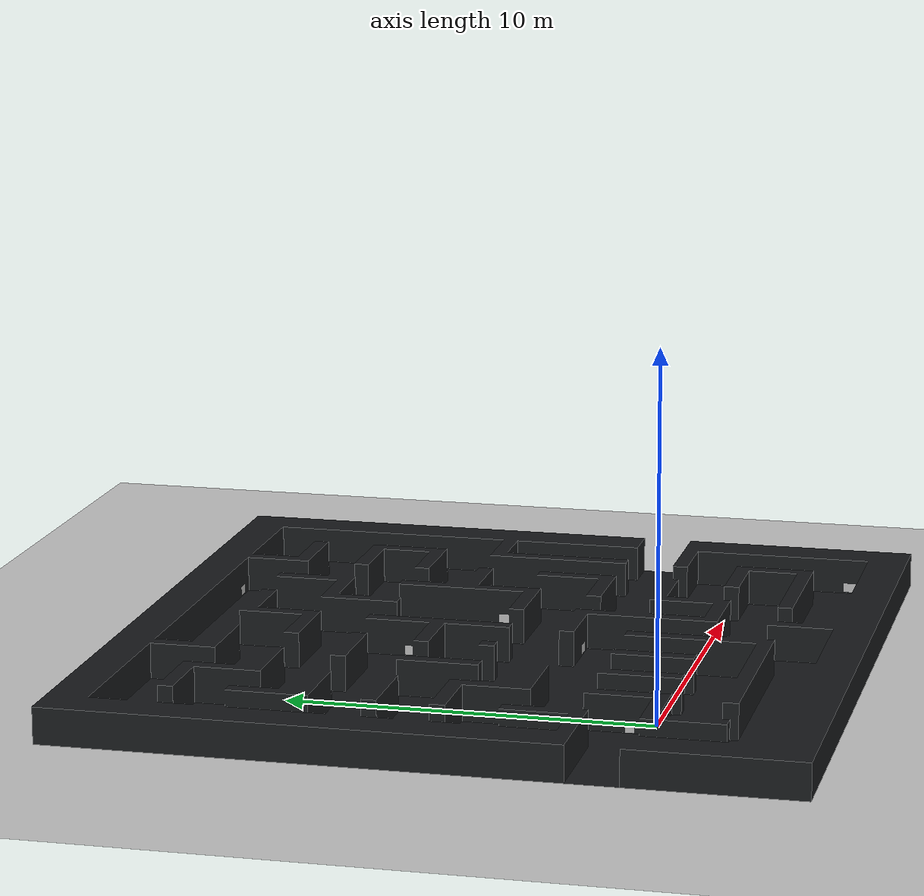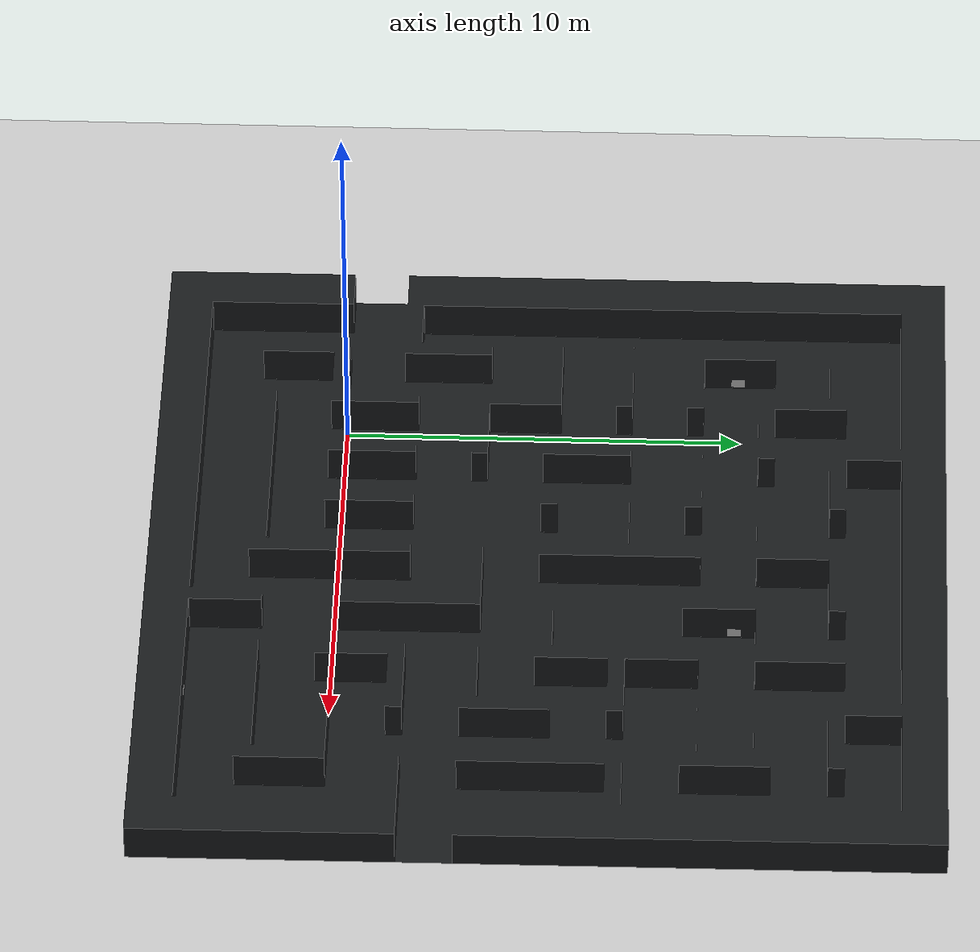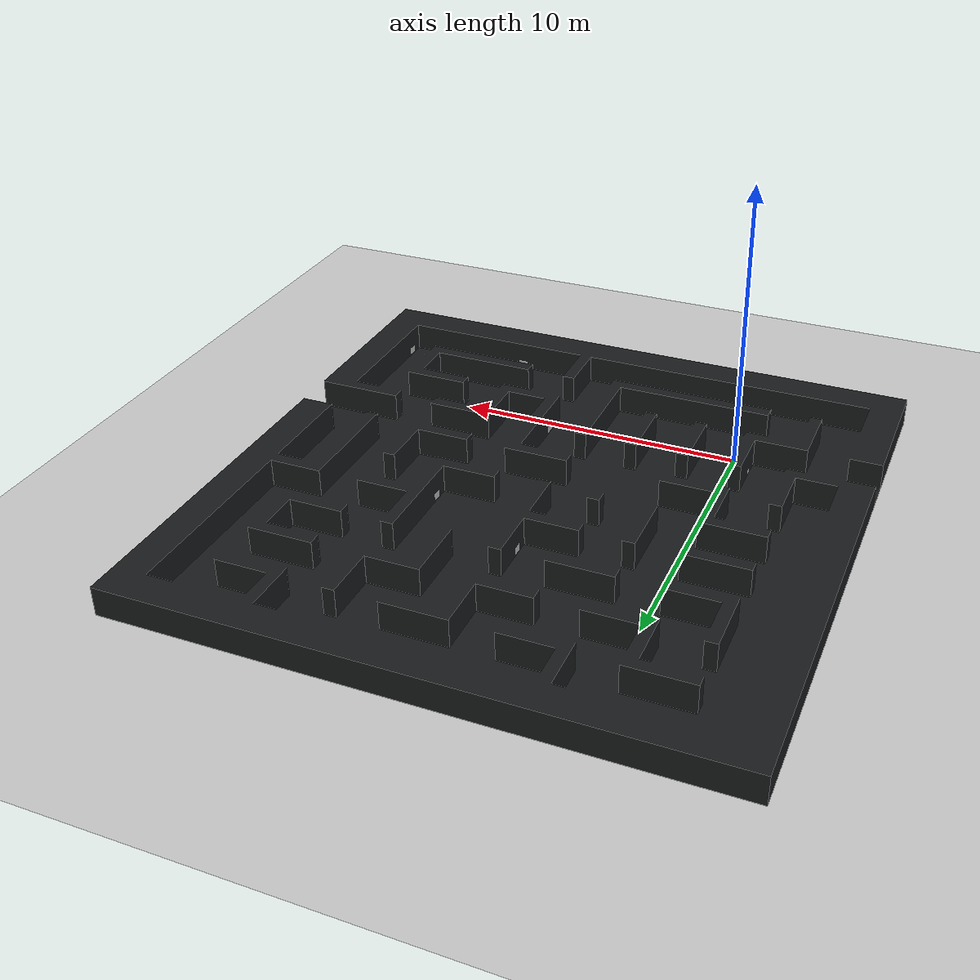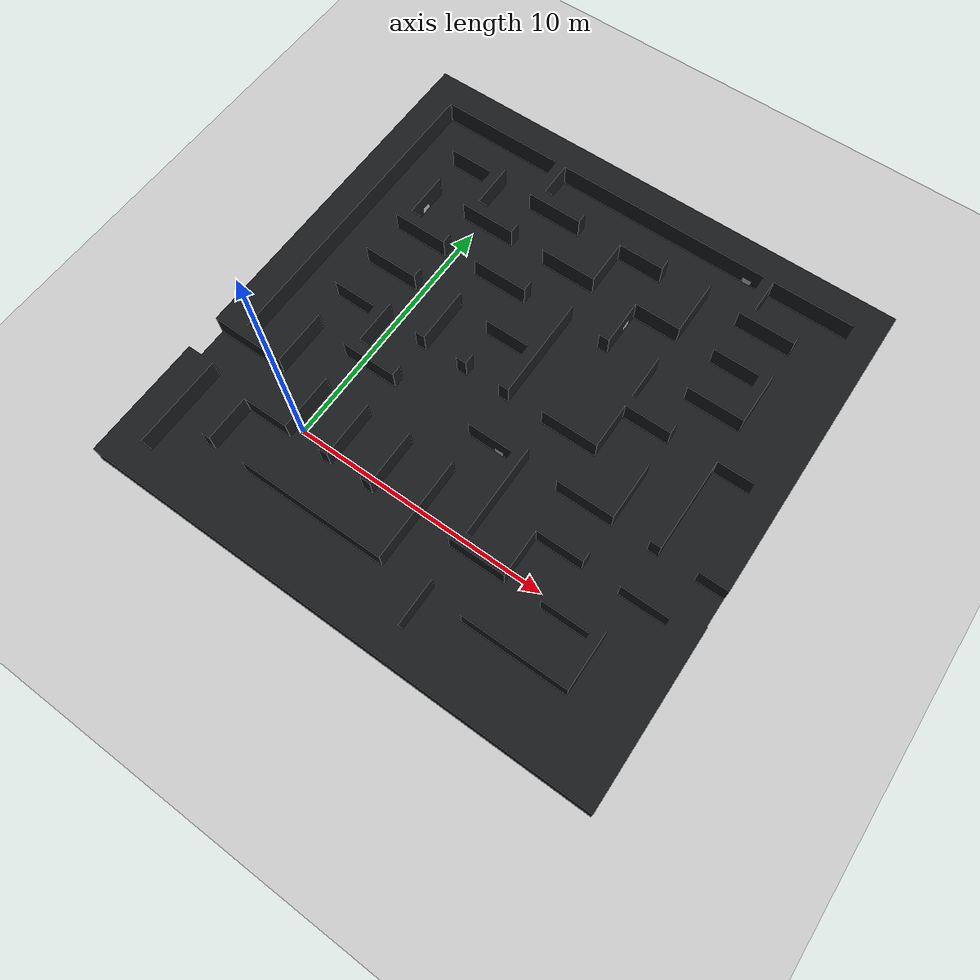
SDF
<sdf version="1.6">
 <world name="default">
  <model name="ground_plane">
   <static>1</static>
   <link name="link">
    <collision name="collision">
     <geometry><plane><normal>0 0 1</normal><size>100 100</size></plane></geometry>
     <surface>
      <contact><collide_bitmask>65535</collide_bitmask></contact>
      <friction><ode><mu>100</mu><mu2>50</mu2></ode></friction>
     </surface>
    </collision>
    <visual name="visual">
     <cast_shadows>0</cast_shadows>
     <geometry><plane><normal>0 0 1</normal><size>100 100</size></plane></geometry>
     <material>
      <script><uri>file://media/materials/scripts/gazebo.material</uri><name>Gazebo/Grey</name></script>
     </material>
    </visual>
   </link>
  </model>
  <physics name="default_physics" default="0" type="ode">
   <real_time_update_rate>1000</real_time_update_rate>
   <max_step_size>0.001</max_step_size>
   <real_time_factor>1</real_time_factor>
   <ode>
    <solver>
     <type>quick</type>
     <iters>150</iters>
     <precon_iters>0</precon_iters>
     <sor>1.4</sor>
     <use_dynamic_moi_rescaling>1</use_dynamic_moi_rescaling>
    </solver>
    <constraints>
     <cfm>1e-05</cfm>
     <erp>0.2</erp>
     <contact_max_correcting_vel>2000</contact_max_correcting_vel>
     <contact_surface_layer>0.01</contact_surface_layer>
    </constraints>
   </ode>
  </physics>
  <scene><ambient>0.4 0.4 0.4 1</ambient><background>0.7 0.7 0.7 1</background><shadows>1</shadows></scene>
  <gravity>0 0 -9.8</gravity>
  <magnetic_field>6e-06 2.3e-05 -4.2e-05</magnetic_field>
  <atmosphere type="adiabatic"/>
  <audio><device>default</device></audio>
  <spherical_coordinates>
   <surface_model>EARTH_WGS84</surface_model>
   <latitude_deg>0</latitude_deg>
   <longitude_deg>0</longitude_deg>
   <elevation>0</elevation>
   <heading_deg>0</heading_deg>
  </spherical_coordinates>
  <light name="user_point_light_0" type="point">
   <pose>-1.92668 0.501048 1 0 -0 0</pose>
   <diffuse>0.5 0.5 0.5 1</diffuse>
   <specular>0.1 0.1 0.1 1</specular>
   <attenuation>
    <range>20</range>
    <constant>0.5</constant>
    <linear>0.01</linear>
    <quadratic>0.001</quadratic>
   </attenuation>
   <cast_shadows>0</cast_shadows>
   <direction>0 0 -1</direction>
  </light>
  <light name="user_point_light_0_clone" type="point">
   <pose>-6.74547 -5.11479 3.92749 0 -0 0</pose>
   <diffuse>1 1 1 1</diffuse>
   <specular>1 1 1 1</specular>
   <direction>0 0 -1</direction>
   <attenuation>
    <range>20</range>
    <constant>0.5</constant>
    <linear>0.01</linear>
    <quadratic>0.001</quadratic>
   </attenuation>
   <cast_shadows>0</cast_shadows>
  </light>
  <light name="user_point_light_0_clone_0" type="point">
   <pose>3.30737 13.7928 3.92749 0 -0 0</pose>
   <diffuse>1 1 1 1</diffuse>
   <specular>1 1 1 1</specular>
   <direction>0 0 -1</direction>
   <attenuation>
    <range>20</range>
    <constant>0.5</constant>
    <linear>0.01</linear>
    <quadratic>0.001</quadratic>
   </attenuation>
   <cast_shadows>0</cast_shadows>
  </light>
  <light name="user_point_light_0_clone_1" type="point">
   <pose>15.1057 7.74887 3.92749 0 -0 0</pose>
   <diffuse>1 1 1 1</diffuse>
   <specular>1 1 1 1</specular>
   <direction>0 0 -1</direction>
   <attenuation>
    <range>20</range>
    <constant>0.5</constant>
    <linear>0.01</linear>
    <quadratic>0.001</quadratic>
   </attenuation>
   <cast_shadows>0</cast_shadows>
  </light>
  <light name="user_point_light_0_clone_2" type="point">
   <pose>16.1184 -1.6573 3.92749 0 -0 0</pose>
   <diffuse>1 1 1 1</diffuse>
   <specular>1 1 1 1</specular>
   <direction>0 0 -1</direction>
   <attenuation>
    <range>20</range>
    <constant>0.5</constant>
    <linear>0.01</linear>
    <quadratic>0.001</quadratic>
   </attenuation>
   <cast_shadows>0</cast_shadows>
  </light>
  <light name="user_point_light_0_clone_3" type="point">
   <pose>-10.2139 6.97976 3.92749 0 -0 0</pose>
   <diffuse>1 1 1 1</diffuse>
   <specular>1 1 1 1</specular>
   <direction>0 0 -1</direction>
   <attenuation>
    <range>20</range>
    <constant>0.5</constant>
    <linear>0.01</linear>
    <quadratic>0.001</quadratic>
   </attenuation>
   <cast_shadows>0</cast_shadows>
  </light>
  <model name="maze_01">
   <link name="link_1">
    <inertial>
     <mass>100000</mass>
     <inertia>
      <ixx>0.166667</ixx>
      <ixy>0</ixy>
      <ixz>0</ixz>
      <iyy>0.166667</iyy>
      <iyz>0</iyz>
      <izz>0.166667</izz>
     </inertia>
    </inertial>
    <pose>0 -0 0 0 0 -3.13795</pose>
    <gravity>0</gravity>
    <visual name="visual"><geometry><mesh><uri>../maze_01.dae</uri><scale>1 1 1</scale></mesh></geometry></visual>
    <collision name="collision">
     <geometry><mesh><uri>../maze_01.dae</uri><scale>1 1 1</scale></mesh></geometry>
     <surface>
      <friction>
       <ode><mu>1</mu><mu2>1</mu2><fdir1>0 0 0</fdir1><slip1>0</slip1><slip2>0</slip2></ode>
       <torsional>
        <coefficient>1</coefficient>
        <patch_radius>0</patch_radius>
        <surface_radius>0</surface_radius>
        <use_patch_radius>1</use_patch_radius>
        <ode><slip>0</slip></ode>
       </torsional>
      </friction>
      <bounce><restitution_coefficient>0</restitution_coefficient><threshold>1e+06</threshold></bounce>
      <contact>
       <collide_without_contact>0</collide_without_contact>
       <collide_without_contact_bitmask>1</collide_without_contact_bitmask>
       <collide_bitmask>1</collide_bitmask>
       <ode>
        <soft_cfm>0</soft_cfm>
        <soft_erp>0.2</soft_erp>
        <kp>1e+13</kp>
        <kd>1</kd>
        <max_vel>0.01</max_vel>
        <min_depth>0</min_depth>
       </ode>
       <bullet>
        <split_impulse>1</split_impulse>
        <split_impulse_penetration_threshold>-0.01</split_impulse_penetration_threshold>
        <soft_cfm>0</soft_cfm>
        <soft_erp>0.2</soft_erp>
        <kp>1e+13</kp>
        <kd>1</kd>
       </bullet>
      </contact>
     </surface>
    </collision>
   </link>
   <static>1</static>
   <pose>4.98577 5.25192 -0.006911 0 -0 0</pose>
  </model>
 </world>
</sdf>
